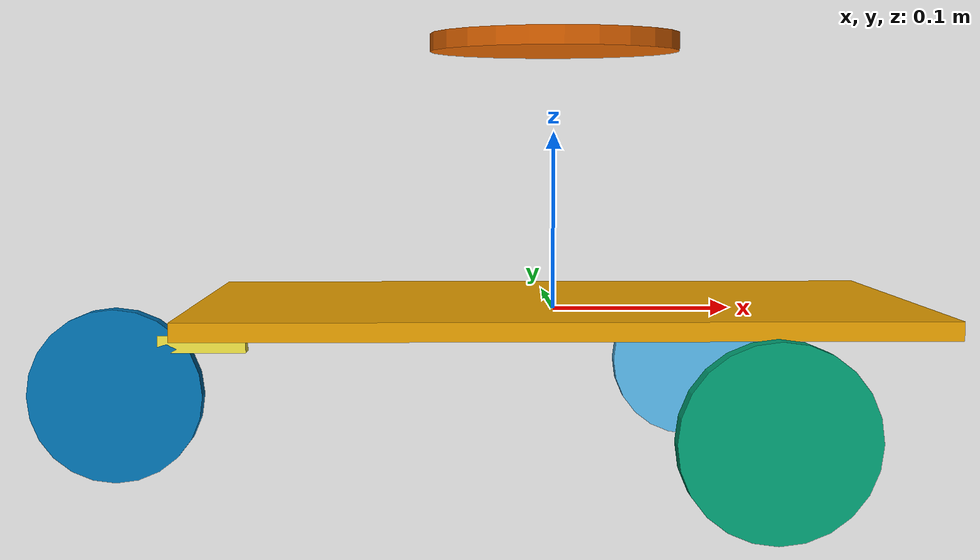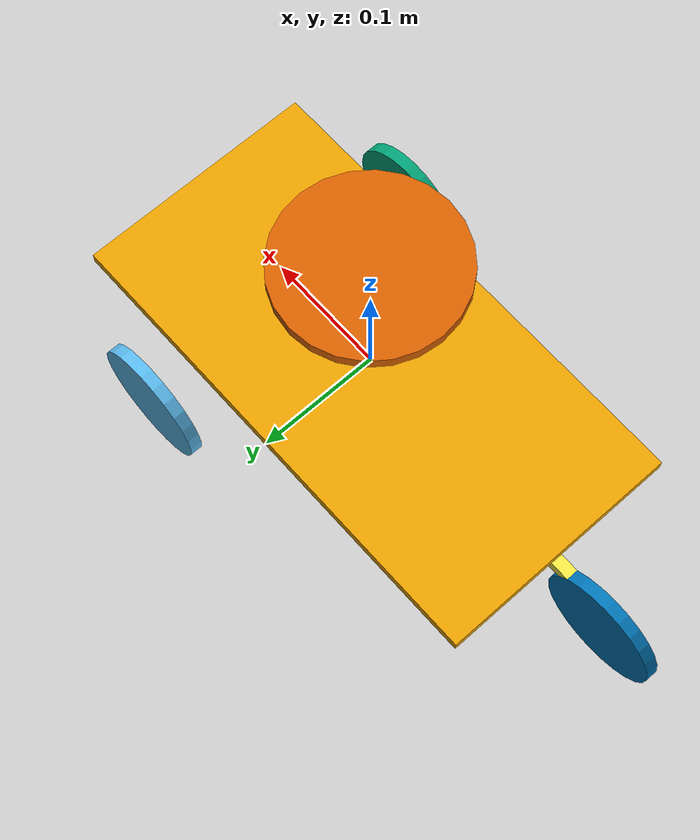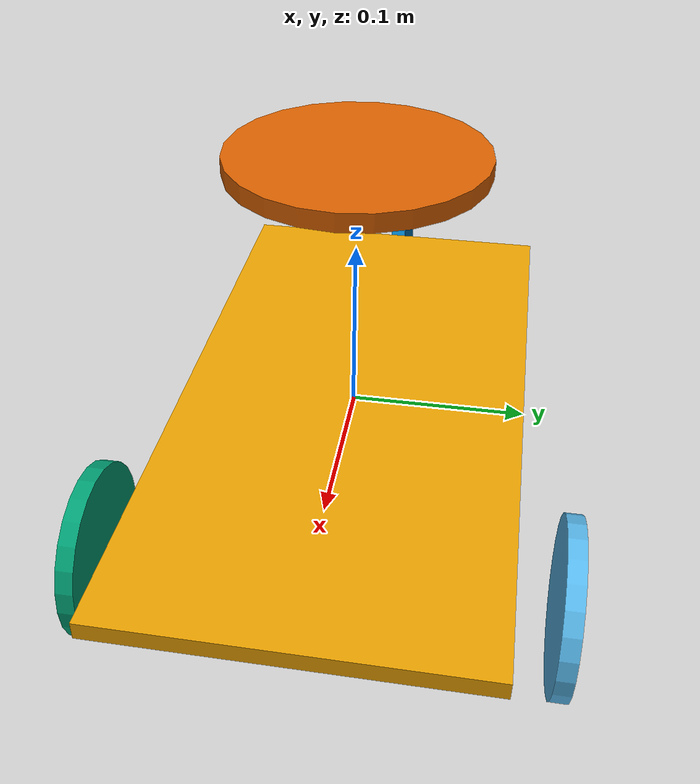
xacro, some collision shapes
<?xml version='1.0' ?>

<robot name="x80sv" xmlns:xacro="http://www.ros.org/wiki/xacro">

 <xacro:property name="wheel_base" value="0.2" />
 <xacro:property name="wheel_diameter" value="0.1" />
 <xacro:property name="axis_height" value="0.05" />
 <xacro:property name="wheel_mass" value="0.05" />
 <xacro:property name="wheel_Ixx" value="0.0000317" />
 <xacro:property name="wheel_Izz" value="0.0000625" />
 <xacro:property name="M_PI" value="3.141592653589793238462643383279502884197169399375105820974944592307816406" />

 <link name="base_link">
  <collision>
   <origin xyz="0 0 0" rpy="0 0 0"/>
    <geometry>
     <box size="0.4 0.2 0.01" />
    </geometry>
  </collision>
  <visual>
   <origin xyz="0 0 -0.20" rpy="0 0 0"/>
   <geometry>
     <mesh filename="package://x80sv_description/meshes/x80sv.stl" />
    </geometry>
  </visual>
  <inertial>
   <mass value="2" />
   <inertia ixx="0.003" ixy="0" ixz="0" iyy="0.003" iyz="0" izz="0.003" />
  </inertial>
 </link>

 <link name="left_wheel">
  <collision>
   <origin xyz="0 0 0" rpy="0 ${M_PI/2} ${M_PI/2}"/>
   <geometry><cylinder radius="${wheel_diameter/2}" length="0.01" /></geometry>
  </collision>
  <visual>
   <origin xyz="0 0 0" rpy="0 ${M_PI/2} ${M_PI/2}"/>
   <geometry><cylinder radius="${wheel_diameter/2}" length="0.01" /></geometry>
  </visual>
  <inertial>
   <mass value="${wheel_mass}" />
   <inertia ixx="${wheel_Ixx}" ixy="0" ixz="0" iyy="${wheel_Ixx}" iyz="0" izz="${wheel_Izz}" />
  </inertial>
 </link>

 <link name="right_wheel">
  <collision>
   <origin xyz="0 0 0" rpy="0 ${M_PI/2} ${M_PI/2}"/>
   <geometry><cylinder radius="${wheel_diameter/2}" length="0.01" /></geometry>
  </collision>
  <visual>
   <origin xyz="0 0 0" rpy="0 ${M_PI/2} ${M_PI/2}"/>
   <geometry><cylinder radius="${wheel_diameter/2}" length="0.01" /></geometry>
  </visual>
  <inertial>
   <mass value="${wheel_mass}" />
   <inertia ixx="${wheel_Ixx}" ixy="0" ixz="0" iyy="${wheel_Ixx}" iyz="0" izz="${wheel_Izz}" />
  </inertial>
 </link>

 <link name="zwenk_wiel_flens">
  <collision>
   <origin xyz="0 0 0" rpy="0 0 0"/>
   <geometry><box size="${wheel_diameter/2} 0.01 0.01" /></geometry>
  </collision>
  <visual>
   <origin xyz="0 0 0" rpy="0 0 0"/>
   <geometry><box size="${wheel_diameter/2} 0.01 0.01" /></geometry>
  </visual>
  <inertial>
   <mass value="0.1" />
   <inertia ixx="0.0001" ixy="0" ixz="0" iyy="0.0001" iyz="0" izz="0.0001" />
  </inertial>
 </link>

 <link name="zwenk_wiel">
  <collision>
   <origin xyz="0 0 0" rpy="0 ${M_PI/2} ${M_PI/2}"/>
   <geometry><cylinder radius="${wheel_diameter/2}" length="0.01" /></geometry>
  </collision>
  <visual>
   <origin xyz="0 0 0" rpy="0 ${M_PI/2} ${M_PI/2}"/>
   <geometry><cylinder radius="${wheel_diameter/2}" length="0.01" /></geometry>
  </visual>
  <inertial>
   <mass value="${wheel_mass}" />
   <inertia ixx="${wheel_Ixx}" ixy="0" ixz="0" iyy="${wheel_Ixx}" iyz="0" izz="${wheel_Izz}" />
  </inertial>
 </link>

 <link name="laser_scanner">
  <collision>
   <origin xyz="0 0 0" rpy="0 0 0"/>
   <geometry><cylinder radius="0.07" length="0.01" /></geometry>
  </collision>
  <visual>
   <origin xyz="0 0 0" rpy="0 0 0"/>
   <geometry><cylinder radius="0.07" length="0.01" /></geometry>
  </visual>
  <inertial>
   <mass value="0.1" />
   <inertia ixx="0.0001" ixy="0" ixz="0" iyy="0.0001" iyz="0" izz="0.0001" />
  </inertial>
 </link>

<!-- Joints -->

  <joint type="continuous" name="left_wheel_as">
   <origin xyz="0.1 0.13 -${axis_height}" rpy="0 0 0"/>
  <child link="left_wheel"/>
  <parent link="base_link" />
  <axis xyz="0 1 0" />
  <limit effort="10.0" velocity="5.0" />
  </joint>

  <joint type="continuous" name="right_wheel_as">
   <origin xyz="0.1 -0.13 -${axis_height}" rpy="0 0 0"/>
  <child link="right_wheel"/>
  <parent link="base_link" />
  <axis xyz="0 1 0" />
  <limit effort="10.0" velocity="5.0" />
  </joint>

  <joint type="continuous" name="zwenk_wiel_as">
   <origin xyz="-${wheel_diameter/2} 0 ${-axis_height+0.02}" rpy="0 0 0"/>
  <child link="zwenk_wiel"/>
  <parent link="zwenk_wiel_flens" />
  <axis xyz="0 1 0" />
  </joint>

  <joint type="continuous" name="zwenk_wiel_stuur_as">
   <origin xyz="-0.2 0 -0.02" rpy="0 0 0"/>
  <parent link="base_link" />
  <child link="zwenk_wiel_flens"/>
  <axis xyz="0 0 1" />
  </joint>

  <joint type="fixed" name="laser_scanner_glue">
   <origin xyz="0 0 0.15" rpy="0 0 0"/>
  <child link="laser_scanner"/>
  <parent link="base_link" />
  </joint>

 <!-- plugins -->

  <!-- hokuyo -->
   <gazebo reference="laser_scanner">
    <sensor type="gpu_ray" name="laser_scanner_sensor">
      <pose>0 0 0 0 0 0</pose>
      <visualize>true</visualize>
      <update_rate>10</update_rate>
      <ray>
        <scan>
          <horizontal>
            <samples>300</samples>
            <resolution>1</resolution>
            <min_angle>${-(M_PI/1.5)}</min_angle>
            <max_angle>${M_PI/1.5}</max_angle>
          </horizontal>
        </scan>
        <range>
          <min>0.20</min>
          <max>4.0</max>
          <resolution>0.01</resolution>
        </range>
        <noise>
          <type>gaussian</type>
          <mean>0.0</mean>
          <stddev>0.01</stddev>
        </noise>
      </ray>
      <plugin name="gazebo_ros_head_hokuyo_controller" filename="libgazebo_ros_gpu_laser.so">
        <topicName>/x80sv/laser/scan</topicName>
        <frameName>laser_scanner</frameName>
      </plugin>
    </sensor>
   </gazebo>

<gazebo>
  <plugin name="differential_drive_controller" filename="libgazebo_ros_diff_drive.so">
    <alwaysOn>true</alwaysOn>
    <updateRate>10</updateRate>
    <leftJoint>left_wheel_as</leftJoint>
    <rightJoint>right_wheel_as</rightJoint>
    <wheelSeparation>${wheel_base}</wheelSeparation>
    <wheelDiameter>${wheel_diameter}</wheelDiameter>
    <torque>20</torque>
    <commandTopic>cmd_vel</commandTopic>
    <odometryTopic>odom</odometryTopic>
    <odometryFrame>odom</odometryFrame>
    <robotBaseFrame>base_link</robotBaseFrame>
  </plugin>
</gazebo>

</robot>
